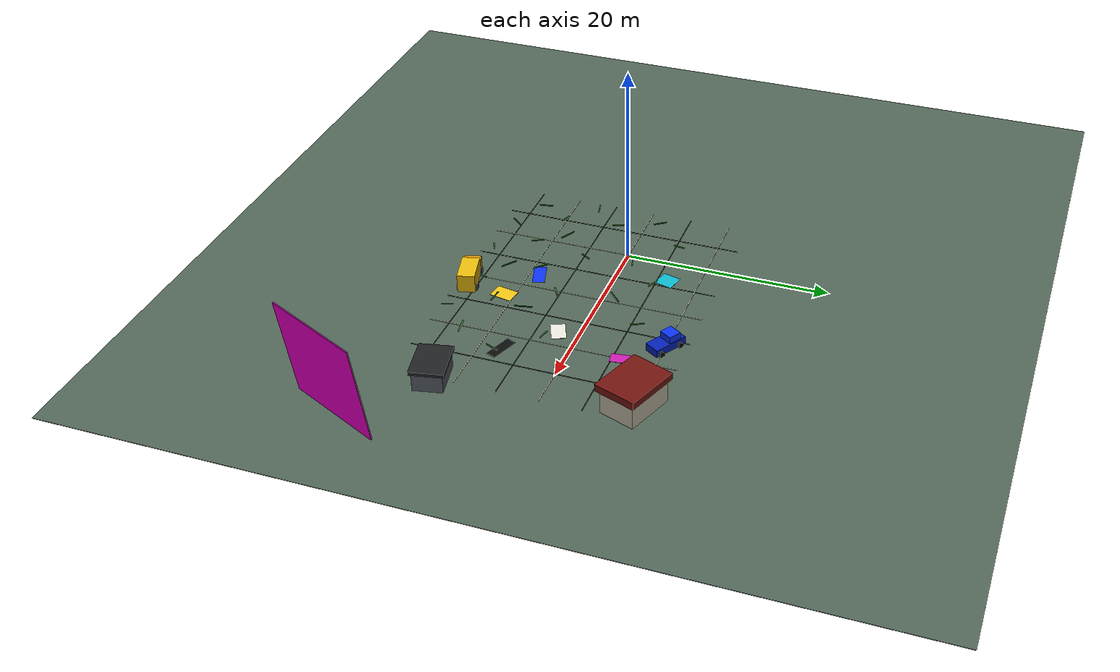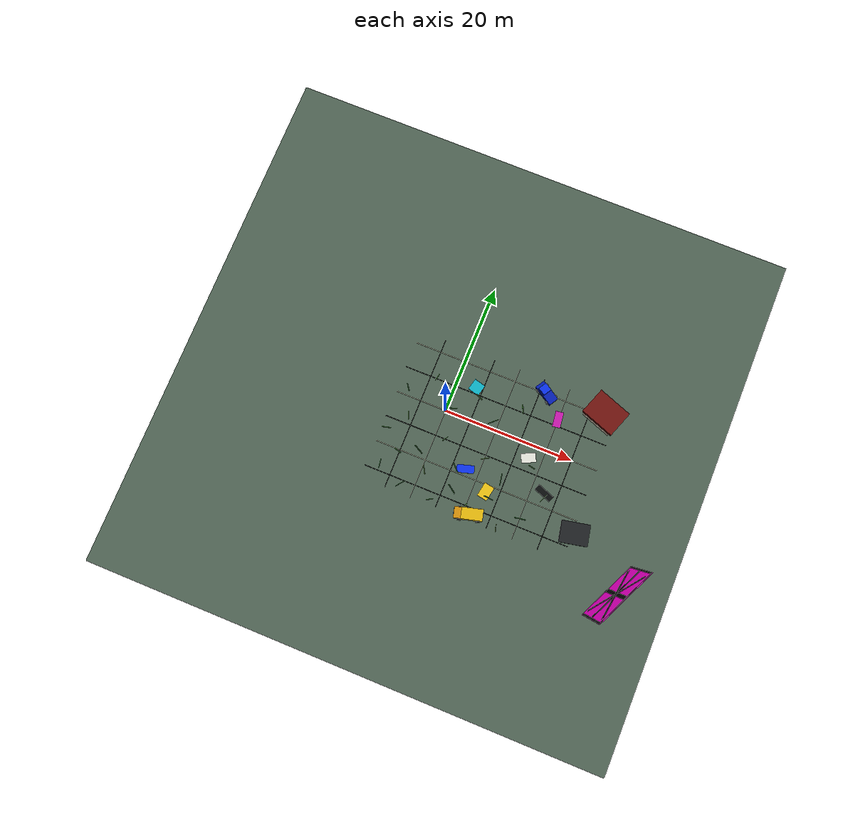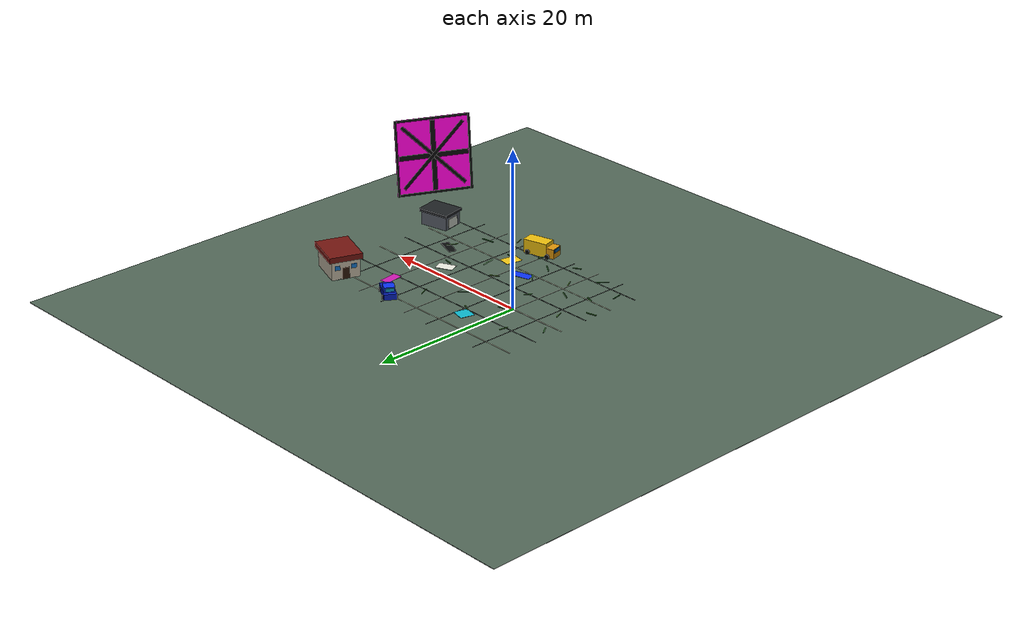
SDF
<sdf version="1.9">
 <world name="vulture_x_plane">
  <physics name="1ms" type="ignore">
   <max_step_size>0.001</max_step_size>
   <real_time_factor>1.0</real_time_factor>
  </physics>
  <plugin filename="gz-sim-physics-system" name="gz::sim::systems::Physics"/>
  <plugin filename="gz-sim-sensors-system" name="gz::sim::systems::Sensors">
   <render_engine>ogre2</render_engine>
  </plugin>
  <plugin filename="gz-sim-user-commands-system" name="gz::sim::systems::UserCommands"/>
  <plugin filename="gz-sim-scene-broadcaster-system" name="gz::sim::systems::SceneBroadcaster"/>
  <plugin filename="gz-sim-imu-system" name="gz::sim::systems::Imu"/>
  <plugin filename="gz-sim-navsat-system" name="gz::sim::systems::NavSat"/>
  <scene><ambient>0.9 0.9 0.9</ambient><background>0.65 0.72 0.78</background></scene>
  <spherical_coordinates>
   <latitude_deg>-35.363262</latitude_deg>
   <longitude_deg>149.165237</longitude_deg>
   <elevation>584</elevation>
   <heading_deg>0</heading_deg>
   <surface_model>EARTH_WGS84</surface_model>
  </spherical_coordinates>
  <light type="directional" name="sun">
   <pose>0 0 20 0 0 0</pose>
   <diffuse>0.9 0.9 0.85 1</diffuse>
   <specular>0.3 0.3 0.3 1</specular>
   <attenuation>
    <range>2000</range>
    <constant>0.9</constant>
    <linear>0.01</linear>
    <quadratic>0.001</quadratic>
   </attenuation>
   <direction>-0.4 0.2 -0.9</direction>
  </light>
  <model name="open_test_area">
   <static>true</static>
   <link name="link">
    <collision name="ground_collision"><geometry><box><size>80 80 0.05</size></box></geometry></collision>
    <visual name="ground_visual">
     <geometry><box><size>80 80 0.05</size></box></geometry>
     <material><ambient>0.26 0.32 0.28 1</ambient><diffuse>0.32 0.40 0.34 1</diffuse></material>
    </visual>
    <visual name="center_line">
     <pose>8 0 0.04 0 0 0</pose>
     <geometry><box><size>28 0.08 0.02</size></box></geometry>
     <material><ambient>1 1 1 1</ambient><diffuse>1 1 1 1</diffuse></material>
    </visual>
   </link>
  </model>
  <model name="tracking_feature_field">
   <static>true</static>
   <link name="link">
    <visual name="grid_x_neg12">
     <pose>8 -12 0.075 0 0 0</pose>
     <geometry><box><size>32 0.08 0.02</size></box></geometry>
     <material><ambient>0.08 0.09 0.08 1</ambient><diffuse>0.08 0.09 0.08 1</diffuse></material>
    </visual>
    <visual name="grid_x_neg8">
     <pose>8 -8 0.075 0 0 0</pose>
     <geometry><box><size>32 0.08 0.02</size></box></geometry>
     <material><ambient>0.88 0.88 0.76 1</ambient><diffuse>0.88 0.88 0.76 1</diffuse></material>
    </visual>
    <visual name="grid_x_neg4">
     <pose>8 -4 0.075 0 0 0</pose>
     <geometry><box><size>32 0.08 0.02</size></box></geometry>
     <material><ambient>0.08 0.09 0.08 1</ambient><diffuse>0.08 0.09 0.08 1</diffuse></material>
    </visual>
    <visual name="grid_x_0">
     <pose>8 0 0.075 0 0 0</pose>
     <geometry><box><size>32 0.08 0.02</size></box></geometry>
     <material><ambient>0.88 0.88 0.76 1</ambient><diffuse>0.88 0.88 0.76 1</diffuse></material>
    </visual>
    <visual name="grid_x_4">
     <pose>8 4 0.075 0 0 0</pose>
     <geometry><box><size>32 0.08 0.02</size></box></geometry>
     <material><ambient>0.08 0.09 0.08 1</ambient><diffuse>0.08 0.09 0.08 1</diffuse></material>
    </visual>
    <visual name="grid_x_8">
     <pose>8 8 0.075 0 0 0</pose>
     <geometry><box><size>32 0.08 0.02</size></box></geometry>
     <material><ambient>0.88 0.88 0.76 1</ambient><diffuse>0.88 0.88 0.76 1</diffuse></material>
    </visual>
    <visual name="grid_y_neg4">
     <pose>-4 -2 0.078 0 0 0</pose>
     <geometry><box><size>0.08 24 0.02</size></box></geometry>
     <material><ambient>0.10 0.11 0.10 1</ambient><diffuse>0.10 0.11 0.10 1</diffuse></material>
    </visual>
    <visual name="grid_y_0">
     <pose>0 -2 0.078 0 0 0</pose>
     <geometry><box><size>0.08 24 0.02</size></box></geometry>
     <material><ambient>0.86 0.88 0.80 1</ambient><diffuse>0.86 0.88 0.80 1</diffuse></material>
    </visual>
    <visual name="grid_y_4">
     <pose>4 -2 0.078 0 0 0</pose>
     <geometry><box><size>0.08 24 0.02</size></box></geometry>
     <material><ambient>0.10 0.11 0.10 1</ambient><diffuse>0.10 0.11 0.10 1</diffuse></material>
    </visual>
    <visual name="grid_y_8">
     <pose>8 -2 0.078 0 0 0</pose>
     <geometry><box><size>0.08 24 0.02</size></box></geometry>
     <material><ambient>0.86 0.88 0.80 1</ambient><diffuse>0.86 0.88 0.80 1</diffuse></material>
    </visual>
    <visual name="grid_y_12">
     <pose>12 -2 0.078 0 0 0</pose>
     <geometry><box><size>0.08 24 0.02</size></box></geometry>
     <material><ambient>0.10 0.11 0.10 1</ambient><diffuse>0.10 0.11 0.10 1</diffuse></material>
    </visual>
    <visual name="grid_y_16">
     <pose>16 -2 0.078 0 0 0</pose>
     <geometry><box><size>0.08 24 0.02</size></box></geometry>
     <material><ambient>0.86 0.88 0.80 1</ambient><diffuse>0.86 0.88 0.80 1</diffuse></material>
    </visual>
    <visual name="grid_y_20">
     <pose>20 -2 0.078 0 0 0</pose>
     <geometry><box><size>0.08 24 0.02</size></box></geometry>
     <material><ambient>0.10 0.11 0.10 1</ambient><diffuse>0.10 0.11 0.10 1</diffuse></material>
    </visual>
    <visual name="blue_patch">
     <pose>6 -7 0.09 0 0 0.28</pose>
     <geometry><box><size>2.6 1.2 0.03</size></box></geometry>
     <material><ambient>0.05 0.20 0.95 1</ambient><diffuse>0.05 0.20 0.95 1</diffuse></material>
    </visual>
    <visual name="yellow_patch">
     <pose>10 -9 0.09 0 0 -0.18</pose>
     <geometry><box><size>1.6 2.2 0.03</size></box></geometry>
     <material><ambient>0.95 0.78 0.08 1</ambient><diffuse>0.95 0.78 0.08 1</diffuse></material>
    </visual>
    <visual name="white_patch">
     <pose>14 -2 0.09 0 0 0.42</pose>
     <geometry><box><size>2.2 1.4 0.03</size></box></geometry>
     <material><ambient>0.92 0.92 0.88 1</ambient><diffuse>0.92 0.92 0.88 1</diffuse></material>
    </visual>
    <visual name="dark_patch">
     <pose>18 -6 0.09 0 0 -0.35</pose>
     <geometry><box><size>2.8 1.0 0.03</size></box></geometry>
     <material><ambient>0.04 0.05 0.05 1</ambient><diffuse>0.04 0.05 0.05 1</diffuse></material>
    </visual>
    <visual name="cyan_patch">
     <pose>3 5 0.09 0 0 -0.25</pose>
     <geometry><box><size>1.8 1.8 0.03</size></box></geometry>
     <material><ambient>0.05 0.72 0.80 1</ambient><diffuse>0.05 0.72 0.80 1</diffuse></material>
    </visual>
    <visual name="magenta_patch">
     <pose>16 5 0.09 0 0 0.12</pose>
     <geometry><box><size>1.2 2.4 0.03</size></box></geometry>
     <material><ambient>0.80 0.10 0.70 1</ambient><diffuse>0.80 0.10 0.70 1</diffuse></material>
    </visual>
    <visual name="grass_blade_a01">
     <pose>-6 -11 0.115 0 0 0.15</pose>
     <geometry><box><size>0.10 1.40 0.08</size></box></geometry>
     <material><ambient>0.12 0.34 0.13 1</ambient><diffuse>0.16 0.42 0.18 1</diffuse></material>
    </visual>
    <visual name="grass_blade_a02">
     <pose>-4.3 -8.2 0.115 0 0 1.22</pose>
     <geometry><box><size>0.12 1.10 0.08</size></box></geometry>
     <material><ambient>0.18 0.40 0.14 1</ambient><diffuse>0.22 0.50 0.18 1</diffuse></material>
    </visual>
    <visual name="grass_blade_a03">
     <pose>-2.1 -12.6 0.115 0 0 -0.70</pose>
     <geometry><box><size>0.09 1.55 0.08</size></box></geometry>
     <material><ambient>0.10 0.28 0.11 1</ambient><diffuse>0.13 0.36 0.14 1</diffuse></material>
    </visual>
    <visual name="grass_blade_a04">
     <pose>0.4 -9.4 0.115 0 0 0.52</pose>
     <geometry><box><size>0.11 1.30 0.08</size></box></geometry>
     <material><ambient>0.24 0.38 0.16 1</ambient><diffuse>0.30 0.48 0.20 1</diffuse></material>
    </visual>
    <visual name="grass_blade_a05">
     <pose>2.8 -13.1 0.115 0 0 -1.10</pose>
     <geometry><box><size>0.10 1.05 0.08</size></box></geometry>
     <material><ambient>0.14 0.32 0.12 1</ambient><diffuse>0.18 0.42 0.16 1</diffuse></material>
    </visual>
    <visual name="grass_blade_a06">
     <pose>5.2 -10.5 0.115 0 0 0.94</pose>
     <geometry><box><size>0.13 1.65 0.08</size></box></geometry>
     <material><ambient>0.08 0.26 0.10 1</ambient><diffuse>0.12 0.34 0.13 1</diffuse></material>
    </visual>
    <visual name="grass_blade_a07">
     <pose>7.9 -12.2 0.115 0 0 -0.28</pose>
     <geometry><box><size>0.12 1.20 0.08</size></box></geometry>
     <material><ambient>0.20 0.42 0.14 1</ambient><diffuse>0.25 0.52 0.18 1</diffuse></material>
    </visual>
    <visual name="grass_blade_a08">
     <pose>10.7 -9.7 0.115 0 0 1.48</pose>
     <geometry><box><size>0.10 1.45 0.08</size></box></geometry>
     <material><ambient>0.12 0.31 0.13 1</ambient><diffuse>0.15 0.40 0.16 1</diffuse></material>
    </visual>
    <visual name="grass_blade_a09">
     <pose>13.3 -13.4 0.115 0 0 0.33</pose>
     <geometry><box><size>0.09 1.15 0.08</size></box></geometry>
     <material><ambient>0.26 0.36 0.15 1</ambient><diffuse>0.32 0.46 0.19 1</diffuse></material>
    </visual>
    <visual name="grass_blade_a10">
     <pose>16.1 -10.8 0.115 0 0 -1.42</pose>
     <geometry><box><size>0.12 1.70 0.08</size></box></geometry>
     <material><ambient>0.09 0.30 0.11 1</ambient><diffuse>0.13 0.39 0.14 1</diffuse></material>
    </visual>
    <visual name="grass_blade_b01">
     <pose>-7.2 -5.6 0.115 0 0 -1.33</pose>
     <geometry><box><size>0.11 1.35 0.08</size></box></geometry>
     <material><ambient>0.16 0.36 0.12 1</ambient><diffuse>0.20 0.45 0.16 1</diffuse></material>
    </visual>
    <visual name="grass_blade_b02">
     <pose>-4.8 -2.7 0.115 0 0 0.38</pose>
     <geometry><box><size>0.10 1.20 0.08</size></box></geometry>
     <material><ambient>0.22 0.40 0.16 1</ambient><diffuse>0.28 0.50 0.20 1</diffuse></material>
    </visual>
    <visual name="grass_blade_b03">
     <pose>-1.5 -6.9 0.115 0 0 1.08</pose>
     <geometry><box><size>0.13 1.60 0.08</size></box></geometry>
     <material><ambient>0.10 0.27 0.10 1</ambient><diffuse>0.14 0.35 0.13 1</diffuse></material>
    </visual>
    <visual name="grass_blade_b04">
     <pose>1.6 -3.9 0.115 0 0 -0.55</pose>
     <geometry><box><size>0.09 1.05 0.08</size></box></geometry>
     <material><ambient>0.18 0.39 0.14 1</ambient><diffuse>0.23 0.49 0.18 1</diffuse></material>
    </visual>
    <visual name="grass_blade_b05">
     <pose>4.6 -7.4 0.115 0 0 0.77</pose>
     <geometry><box><size>0.12 1.50 0.08</size></box></geometry>
     <material><ambient>0.12 0.33 0.12 1</ambient><diffuse>0.17 0.43 0.16 1</diffuse></material>
    </visual>
    <visual name="grass_blade_b06">
     <pose>8.1 -4.5 0.115 0 0 -1.05</pose>
     <geometry><box><size>0.11 1.25 0.08</size></box></geometry>
     <material><ambient>0.25 0.38 0.15 1</ambient><diffuse>0.31 0.48 0.19 1</diffuse></material>
    </visual>
    <visual name="grass_blade_b07">
     <pose>11.4 -6.5 0.115 0 0 0.18</pose>
     <geometry><box><size>0.10 1.75 0.08</size></box></geometry>
     <material><ambient>0.08 0.24 0.09 1</ambient><diffuse>0.12 0.34 0.12 1</diffuse></material>
    </visual>
    <visual name="grass_blade_b08">
     <pose>14.9 -3.1 0.115 0 0 1.36</pose>
     <geometry><box><size>0.12 1.10 0.08</size></box></geometry>
     <material><ambient>0.17 0.37 0.14 1</ambient><diffuse>0.21 0.46 0.18 1</diffuse></material>
    </visual>
    <visual name="grass_blade_b09">
     <pose>18.2 -6.8 0.115 0 0 -0.42</pose>
     <geometry><box><size>0.09 1.45 0.08</size></box></geometry>
     <material><ambient>0.23 0.41 0.16 1</ambient><diffuse>0.29 0.51 0.20 1</diffuse></material>
    </visual>
    <visual name="grass_blade_c01">
     <pose>-6.5 1.2 0.115 0 0 0.62</pose>
     <geometry><box><size>0.12 1.30 0.08</size></box></geometry>
     <material><ambient>0.11 0.30 0.12 1</ambient><diffuse>0.15 0.39 0.15 1</diffuse></material>
    </visual>
    <visual name="grass_blade_c02">
     <pose>-3.0 4.3 0.115 0 0 -0.18</pose>
     <geometry><box><size>0.09 1.15 0.08</size></box></geometry>
     <material><ambient>0.20 0.43 0.15 1</ambient><diffuse>0.25 0.53 0.19 1</diffuse></material>
    </visual>
    <visual name="grass_blade_c03">
     <pose>0.8 0.7 0.115 0 0 -1.28</pose>
     <geometry><box><size>0.11 1.60 0.08</size></box></geometry>
     <material><ambient>0.13 0.33 0.12 1</ambient><diffuse>0.18 0.43 0.16 1</diffuse></material>
    </visual>
    <visual name="grass_blade_c04">
     <pose>3.9 3.8 0.115 0 0 1.12</pose>
     <geometry><box><size>0.13 1.25 0.08</size></box></geometry>
     <material><ambient>0.24 0.37 0.16 1</ambient><diffuse>0.30 0.47 0.20 1</diffuse></material>
    </visual>
    <visual name="grass_blade_c05">
     <pose>7.2 1.1 0.115 0 0 -0.82</pose>
     <geometry><box><size>0.10 1.70 0.08</size></box></geometry>
     <material><ambient>0.09 0.27 0.10 1</ambient><diffuse>0.13 0.36 0.13 1</diffuse></material>
    </visual>
    <visual name="grass_blade_c06">
     <pose>10.6 4.5 0.115 0 0 0.44</pose>
     <geometry><box><size>0.12 1.35 0.08</size></box></geometry>
     <material><ambient>0.19 0.39 0.14 1</ambient><diffuse>0.23 0.49 0.18 1</diffuse></material>
    </visual>
   </link>
  </model>
  <model name="small_house_cluster">
   <pose>22 8 0 0 0 -0.35</pose>
   <static>true</static>
   <link name="link">
    <visual name="house_body">
     <pose>0 0 1.2 0 0 0</pose>
     <geometry><box><size>4.8 3.6 2.4</size></box></geometry>
     <material><ambient>0.76 0.72 0.64 1</ambient><diffuse>0.76 0.72 0.64 1</diffuse></material>
    </visual>
    <visual name="roof">
     <pose>0 0 2.75 0 0 0</pose>
     <geometry><box><size>5.4 4.2 0.7</size></box></geometry>
     <material><ambient>0.45 0.08 0.06 1</ambient><diffuse>0.45 0.08 0.06 1</diffuse></material>
    </visual>
    <visual name="door">
     <pose>-2.42 0 0.75 0 0 0</pose>
     <geometry><box><size>0.04 0.9 1.5</size></box></geometry>
     <material><ambient>0.18 0.09 0.03 1</ambient><diffuse>0.18 0.09 0.03 1</diffuse></material>
    </visual>
    <visual name="window_left">
     <pose>-2.43 -1.05 1.55 0 0 0</pose>
     <geometry><box><size>0.04 0.65 0.55</size></box></geometry>
     <material>
      <ambient>0.08 0.45 0.78 1</ambient>
      <diffuse>0.08 0.45 0.78 1</diffuse>
      <emissive>0.02 0.08 0.12 1</emissive>
     </material>
    </visual>
    <visual name="window_right">
     <pose>-2.43 1.05 1.55 0 0 0</pose>
     <geometry><box><size>0.04 0.65 0.55</size></box></geometry>
     <material>
      <ambient>0.08 0.45 0.78 1</ambient>
      <diffuse>0.08 0.45 0.78 1</diffuse>
      <emissive>0.02 0.08 0.12 1</emissive>
     </material>
    </visual>
   </link>
  </model>
  <model name="garage_shed">
   <pose>24 -10 0 0 0 0.2</pose>
   <static>true</static>
   <link name="link">
    <visual name="shed_body">
     <pose>0 0 0.9 0 0 0</pose>
     <geometry><box><size>3.8 2.8 1.8</size></box></geometry>
     <material><ambient>0.34 0.36 0.40 1</ambient><diffuse>0.34 0.36 0.40 1</diffuse></material>
    </visual>
    <visual name="shed_roof">
     <pose>0 0 2.0 0 0 0</pose>
     <geometry><box><size>4.2 3.2 0.35</size></box></geometry>
     <material><ambient>0.12 0.13 0.14 1</ambient><diffuse>0.12 0.13 0.14 1</diffuse></material>
    </visual>
    <visual name="garage_door">
     <pose>-1.92 0 0.75 0 0 0</pose>
     <geometry><box><size>0.04 1.8 1.25</size></box></geometry>
     <material><ambient>0.80 0.82 0.78 1</ambient><diffuse>0.80 0.82 0.78 1</diffuse></material>
    </visual>
   </link>
  </model>
  <model name="blue_pickup_vehicle">
   <pose>13 8 0 0 0 -0.55</pose>
   <static>true</static>
   <link name="link">
    <visual name="body">
     <pose>0 0 0.45 0 0 0</pose>
     <geometry><box><size>3.4 1.55 0.75</size></box></geometry>
     <material><ambient>0.02 0.12 0.72 1</ambient><diffuse>0.02 0.12 0.72 1</diffuse></material>
    </visual>
    <visual name="cabin">
     <pose>-0.55 0 1.05 0 0 0</pose>
     <geometry><box><size>1.25 1.35 0.85</size></box></geometry>
     <material><ambient>0.04 0.20 0.95 1</ambient><diffuse>0.04 0.20 0.95 1</diffuse></material>
    </visual>
    <visual name="windshield">
     <pose>-1.2 0 1.14 0 0 0</pose>
     <geometry><box><size>0.06 1.05 0.45</size></box></geometry>
     <material><ambient>0.06 0.55 0.70 1</ambient><diffuse>0.06 0.55 0.70 1</diffuse></material>
    </visual>
    <visual name="wheel_fl">
     <pose>-1.05 -0.86 0.25 1.5708 0 0</pose>
     <geometry><cylinder><radius>0.28</radius><length>0.18</length></cylinder></geometry>
     <material><ambient>0.02 0.02 0.02 1</ambient><diffuse>0.02 0.02 0.02 1</diffuse></material>
    </visual>
    <visual name="wheel_fr">
     <pose>-1.05 0.86 0.25 1.5708 0 0</pose>
     <geometry><cylinder><radius>0.28</radius><length>0.18</length></cylinder></geometry>
     <material><ambient>0.02 0.02 0.02 1</ambient><diffuse>0.02 0.02 0.02 1</diffuse></material>
    </visual>
    <visual name="wheel_rl">
     <pose>1.15 -0.86 0.25 1.5708 0 0</pose>
     <geometry><cylinder><radius>0.28</radius><length>0.18</length></cylinder></geometry>
     <material><ambient>0.02 0.02 0.02 1</ambient><diffuse>0.02 0.02 0.02 1</diffuse></material>
    </visual>
    <visual name="wheel_rr">
     <pose>1.15 0.86 0.25 1.5708 0 0</pose>
     <geometry><cylinder><radius>0.28</radius><length>0.18</length></cylinder></geometry>
     <material><ambient>0.02 0.02 0.02 1</ambient><diffuse>0.02 0.02 0.02 1</diffuse></material>
    </visual>
   </link>
  </model>
  <model name="yellow_box_truck">
   <pose>9 -13 0 0 0 0.25</pose>
   <static>true</static>
   <link name="link">
    <visual name="cargo_box">
     <pose>0.35 0 0.95 0 0 0</pose>
     <geometry><box><size>3.2 1.7 1.8</size></box></geometry>
     <material><ambient>0.92 0.74 0.05 1</ambient><diffuse>0.92 0.74 0.05 1</diffuse></material>
    </visual>
    <visual name="cab">
     <pose>-1.65 0 0.75 0 0 0</pose>
     <geometry><box><size>1.3 1.65 1.25</size></box></geometry>
     <material><ambient>0.86 0.58 0.04 1</ambient><diffuse>0.86 0.58 0.04 1</diffuse></material>
    </visual>
    <visual name="truck_window">
     <pose>-2.32 0 1.05 0 0 0</pose>
     <geometry><box><size>0.05 1.1 0.45</size></box></geometry>
     <material><ambient>0.05 0.36 0.62 1</ambient><diffuse>0.05 0.36 0.62 1</diffuse></material>
    </visual>
    <visual name="truck_wheel_fl">
     <pose>-1.45 -0.92 0.28 1.5708 0 0</pose>
     <geometry><cylinder><radius>0.32</radius><length>0.2</length></cylinder></geometry>
     <material><ambient>0.02 0.02 0.02 1</ambient><diffuse>0.02 0.02 0.02 1</diffuse></material>
    </visual>
    <visual name="truck_wheel_fr">
     <pose>-1.45 0.92 0.28 1.5708 0 0</pose>
     <geometry><cylinder><radius>0.32</radius><length>0.2</length></cylinder></geometry>
     <material><ambient>0.02 0.02 0.02 1</ambient><diffuse>0.02 0.02 0.02 1</diffuse></material>
    </visual>
    <visual name="truck_wheel_rl">
     <pose>1.35 -0.92 0.28 1.5708 0 0</pose>
     <geometry><cylinder><radius>0.32</radius><length>0.2</length></cylinder></geometry>
     <material><ambient>0.02 0.02 0.02 1</ambient><diffuse>0.02 0.02 0.02 1</diffuse></material>
    </visual>
    <visual name="truck_wheel_rr">
     <pose>1.35 0.92 0.28 1.5708 0 0</pose>
     <geometry><cylinder><radius>0.32</radius><length>0.2</length></cylinder></geometry>
     <material><ambient>0.02 0.02 0.02 1</ambient><diffuse>0.02 0.02 0.02 1</diffuse></material>
    </visual>
   </link>
  </model>
  <model name="target_marker">
   <pose degrees="true">32 -16 5.2 0 8 -25</pose>
   <static>true</static>
   <link name="link">
    <collision name="collision"><geometry><box><size>0.08 10 10</size></box></geometry></collision>
    <visual name="magenta_tracking_banner">
     <geometry><box><size>0.08 10 10</size></box></geometry>
     <material>
      <ambient>1.0 0.0 0.85 1</ambient>
      <diffuse>1.0 0.0 0.85 1</diffuse>
      <emissive>0.45 0.0 0.35 1</emissive>
     </material>
    </visual>
    <visual name="crosshair_horizontal">
     <pose>-0.055 0 0 0 0 0</pose>
     <geometry><box><size>0.025 9.2 0.65</size></box></geometry>
     <material>
      <ambient>0.02 0.02 0.02 1</ambient>
      <diffuse>0.02 0.02 0.02 1</diffuse>
      <emissive>0.01 0.01 0.01 1</emissive>
     </material>
    </visual>
    <visual name="crosshair_vertical">
     <pose>-0.058 0 0 0 0 0</pose>
     <geometry><box><size>0.025 0.65 9.2</size></box></geometry>
     <material>
      <ambient>0.02 0.02 0.02 1</ambient>
      <diffuse>0.02 0.02 0.02 1</diffuse>
      <emissive>0.01 0.01 0.01 1</emissive>
     </material>
    </visual>
    <visual name="x_mark_positive">
     <pose>-0.061 0 0 0.785398 0 0</pose>
     <geometry><box><size>0.025 11.5 0.45</size></box></geometry>
     <material>
      <ambient>0.02 0.02 0.02 1</ambient>
      <diffuse>0.02 0.02 0.02 1</diffuse>
      <emissive>0.01 0.01 0.01 1</emissive>
     </material>
    </visual>
    <visual name="x_mark_negative">
     <pose>-0.064 0 0 -0.785398 0 0</pose>
     <geometry><box><size>0.025 11.5 0.45</size></box></geometry>
     <material>
      <ambient>0.02 0.02 0.02 1</ambient>
      <diffuse>0.02 0.02 0.02 1</diffuse>
      <emissive>0.01 0.01 0.01 1</emissive>
     </material>
    </visual>
    <visual name="border_top">
     <pose>-0.067 0 4.85 0 0 0</pose>
     <geometry><box><size>0.025 10 0.3</size></box></geometry>
     <material>
      <ambient>0.02 0.02 0.02 1</ambient>
      <diffuse>0.02 0.02 0.02 1</diffuse>
      <emissive>0.01 0.01 0.01 1</emissive>
     </material>
    </visual>
    <visual name="border_bottom">
     <pose>-0.070 0 -4.85 0 0 0</pose>
     <geometry><box><size>0.025 10 0.3</size></box></geometry>
     <material>
      <ambient>0.02 0.02 0.02 1</ambient>
      <diffuse>0.02 0.02 0.02 1</diffuse>
      <emissive>0.01 0.01 0.01 1</emissive>
     </material>
    </visual>
    <visual name="border_left">
     <pose>-0.073 -4.85 0 0 0 0</pose>
     <geometry><box><size>0.025 0.3 10</size></box></geometry>
     <material>
      <ambient>0.02 0.02 0.02 1</ambient>
      <diffuse>0.02 0.02 0.02 1</diffuse>
      <emissive>0.01 0.01 0.01 1</emissive>
     </material>
    </visual>
    <visual name="border_right">
     <pose>-0.076 4.85 0 0 0 0</pose>
     <geometry><box><size>0.025 0.3 10</size></box></geometry>
     <material>
      <ambient>0.02 0.02 0.02 1</ambient>
      <diffuse>0.02 0.02 0.02 1</diffuse>
      <emissive>0.01 0.01 0.01 1</emissive>
     </material>
    </visual>
   </link>
  </model>
 </world>
</sdf>
